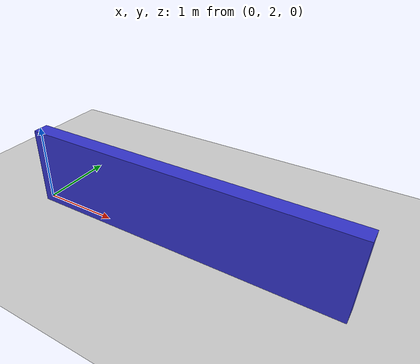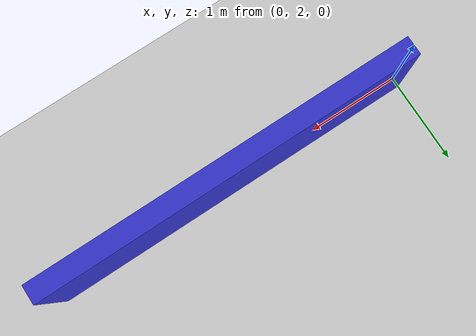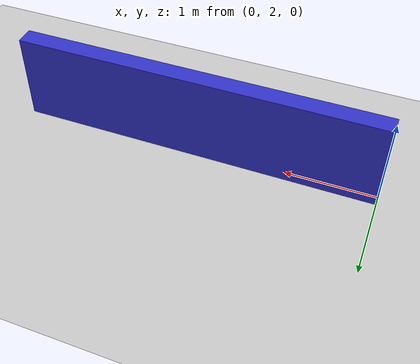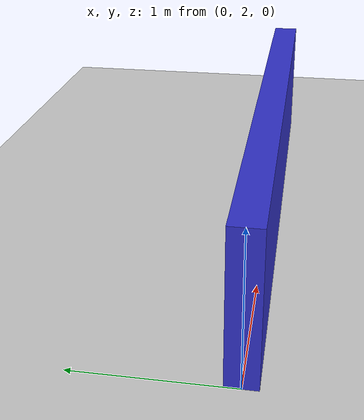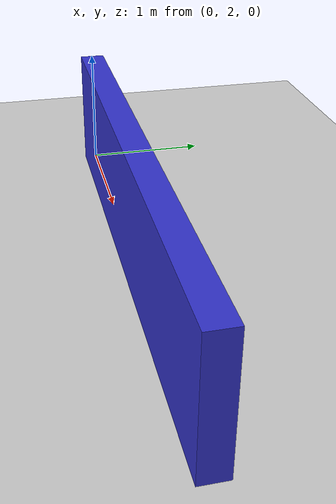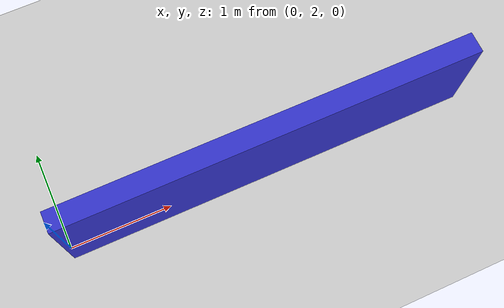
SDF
<?xml version="1.0" ?>
<sdf version="1.8">
<world name="research_world">
    <physics name="1ms" type="ignored">
        <max_step_size>0.001</max_step_size>
        <real_time_factor>1.0</real_time_factor>
    </physics>
    <plugin filename="gz-sim-physics-system" name="gz::sim::systems::Physics"></plugin>
    <plugin filename="gz-sim-user-commands-system" name="gz::sim::systems::UserCommands"></plugin>
    <plugin filename="gz-sim-scene-broadcaster-system" name="gz::sim::systems::SceneBroadcaster"></plugin>
    <plugin filename="gz-sim-sensors-system" name="gz::sim::systems::Sensors">
        <render_engine>ogre2</render_engine>
    </plugin>
    <light type="directional" name="sun">
        <cast_shadows>true</cast_shadows>
        <pose>0 0 10 0 0 0</pose>
        <diffuse>0.8 0.8 0.8 1</diffuse>
        <specular>0.2 0.2 0.2 1</specular>
        <direction>-0.5 0.1 -0.9</direction>
    </light>
    <model name="ground_plane">
        <static>true</static>
        <link name="link">
            <collision name="collision"><geometry><plane><normal>0 0 1</normal><size>100 100</size></plane></geometry></collision>
            <visual name="visual"><geometry><plane><normal>0 0 1</normal><size>100 100</size></plane></geometry><material><ambient>0.8 0.8 0.8 1</ambient><diffuse>0.8 0.8 0.8 1</diffuse></material></visual>
        </link>
    </model>
    <model name="wall_1">
        <pose>2 2 0.5 0 0 0</pose>
        <static>true</static>
        <link name="link">
            <collision name="collision"><geometry><box><size>4 0.2 1</size></box></geometry></collision>
            <visual name="visual"><geometry><box><size>4 0.2 1</size></box></geometry><material><diffuse>0.2 0.2 0.8 1.0</diffuse></material></visual>
        </link>
    </model>
</world>
</sdf>
